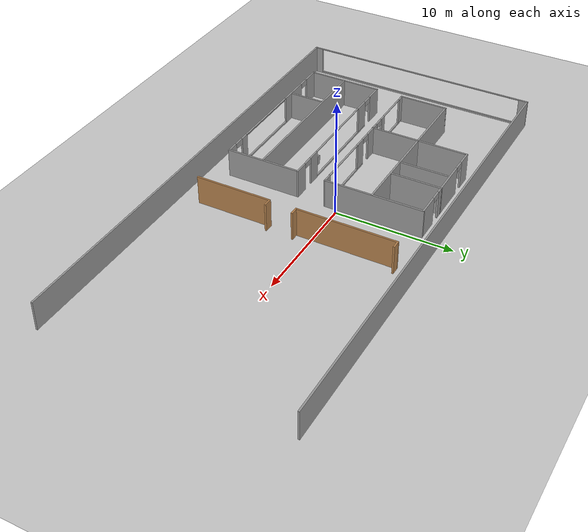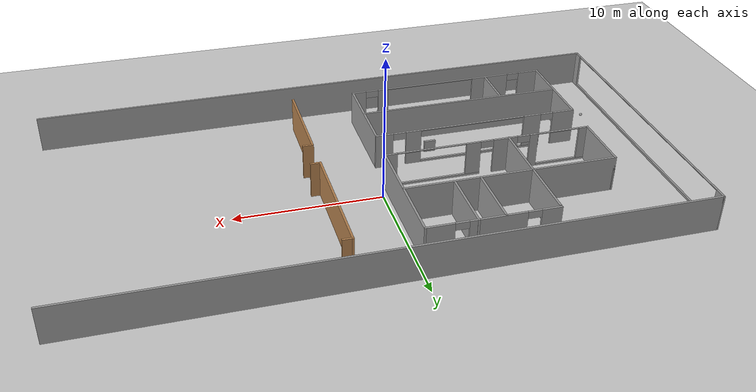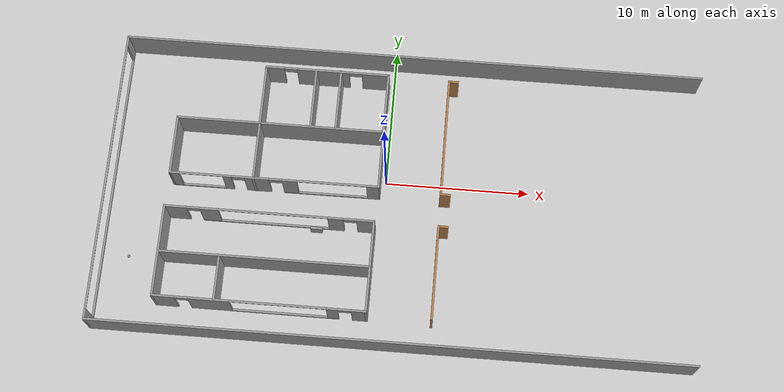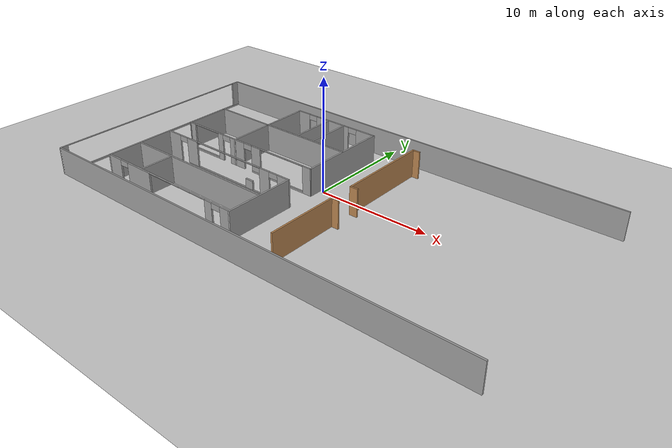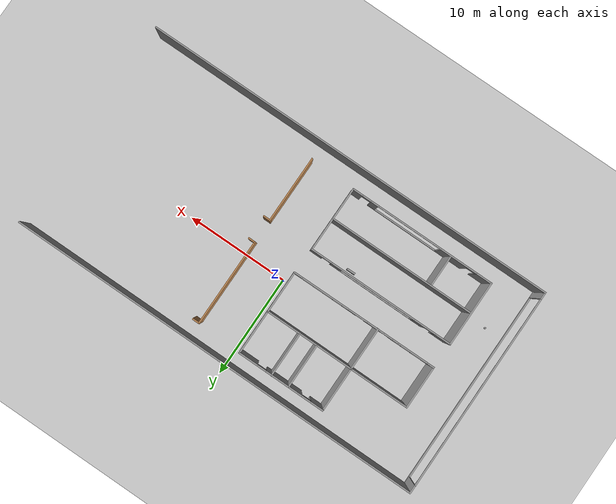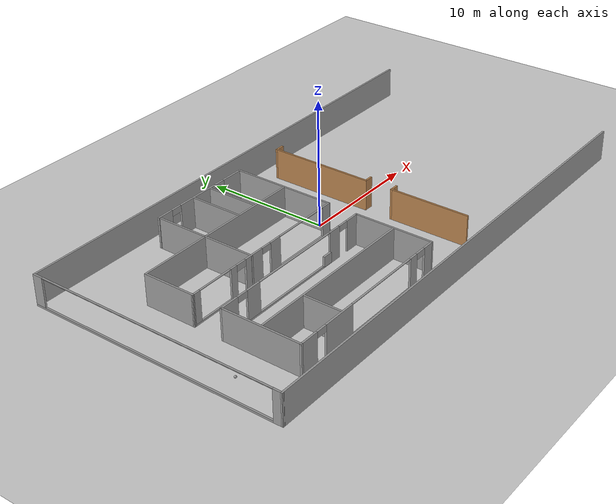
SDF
<sdf version="1.7">
 <world name="default">
  <model name="ground_plane">
   <static>1</static>
   <link name="link">
    <collision name="collision">
     <geometry><plane><normal>0 0 1</normal><size>100 100</size></plane></geometry>
     <surface>
      <contact><collide_bitmask>65535</collide_bitmask></contact>
      <friction><ode><mu>100</mu><mu2>50</mu2></ode></friction>
     </surface>
    </collision>
    <visual name="visual">
     <cast_shadows>0</cast_shadows>
     <geometry><plane><normal>0 0 1</normal><size>100 100</size></plane></geometry>
     <material>
      <script><uri>file://media/materials/scripts/gazebo.material</uri><name>Gazebo/Grey</name></script>
     </material>
    </visual>
   </link>
  </model>
  <model name="SLC_B1">
   <pose>1.2539 -1.59654 0 0 -0 0</pose>
   <link name="Wall_10">
    <pose>-20.3724 4.3e-05 0 0 -0 1.5708</pose>
    <visual name="Wall_10_Visual_0">
     <pose>-10.0243 0 1.25 0 -0 0</pose>
     <geometry><box><size>0.747884 0.15 2.5</size></box></geometry>
     <material>
      <script><uri>file://media/materials/scripts/gazebo.material</uri><name>Gazebo/Grey</name></script>
      <ambient>0.533333 0.541176 0.521569 1</ambient>
     </material>
     <meta><layer>0</layer></meta>
    </visual>
    <collision name="Wall_10_Collision_0">
     <geometry><box><size>0.747884 0.15 2.5</size></box></geometry>
     <pose>-10.0243 0 1.25 0 -0 0</pose>
    </collision>
    <visual name="Wall_10_Visual_1">
     <pose>0.373942 0 0.075 0 -0 0</pose>
     <geometry><box><size>20.0486 0.15 0.15</size></box></geometry>
     <material>
      <script><uri>file://media/materials/scripts/gazebo.material</uri><name>Gazebo/Grey</name></script>
      <ambient>0.533333 0.541176 0.521569 1</ambient>
     </material>
     <meta><layer>0</layer></meta>
    </visual>
    <collision name="Wall_10_Collision_1">
     <geometry><box><size>20.0486 0.15 0.15</size></box></geometry>
     <pose>0.373942 0 0.075 0 -0 0</pose>
    </collision>
    <visual name="Wall_10_Visual_2">
     <pose>9.98544 0 1.325 0 -0 0</pose>
     <geometry><box><size>0.82564 0.15 2.35</size></box></geometry>
     <material>
      <script><uri>file://media/materials/scripts/gazebo.material</uri><name>Gazebo/Grey</name></script>
      <ambient>0.533333 0.541176 0.521569 1</ambient>
     </material>
     <meta><layer>0</layer></meta>
    </visual>
    <collision name="Wall_10_Collision_2">
     <geometry><box><size>0.82564 0.15 2.35</size></box></geometry>
     <pose>9.98544 0 1.325 0 -0 0</pose>
    </collision>
    <visual name="Wall_10_Visual_3">
     <pose>-0.038878 0 2.475 0 -0 0</pose>
     <geometry><box><size>19.223 0.15 0.05</size></box></geometry>
     <material>
      <script><uri>file://media/materials/scripts/gazebo.material</uri><name>Gazebo/Grey</name></script>
      <ambient>0.533333 0.541176 0.521569 1</ambient>
     </material>
     <meta><layer>0</layer></meta>
    </visual>
    <collision name="Wall_10_Collision_3">
     <geometry><box><size>19.223 0.15 0.05</size></box></geometry>
     <pose>-0.038878 0 2.475 0 -0 0</pose>
    </collision>
   </link>
   <link name="Wall_51">
    <collision name="Wall_51_Collision">
     <geometry><box><size>8.5 0.15 2.5</size></box></geometry>
     <pose>0 0 1.25 0 -0 0</pose>
    </collision>
    <visual name="Wall_51_Visual">
     <pose>0 0 1.25 0 -0 0</pose>
     <geometry><box><size>8.5 0.15 2.5</size></box></geometry>
     <material>
      <script><uri>file://media/materials/scripts/gazebo.material</uri><name>Gazebo/Grey</name></script>
      <ambient>0.533333 0.541176 0.521569 1</ambient>
     </material>
     <meta><layer>0</layer></meta>
    </visual>
    <pose>-1.66639 4.62571 0 0 -0 -1.5708</pose>
   </link>
   <link name="Wall_52">
    <pose>-8.86466 0.427447 0 0 -0 -3.13836</pose>
    <visual name="Wall_52_Visual_0">
     <pose>-6.82551 0 1.25 0 -0 0</pose>
     <geometry><box><size>0.895575 0.15 2.5</size></box></geometry>
     <material>
      <script><uri>file://media/materials/scripts/gazebo.material</uri><name>Gazebo/Grey</name></script>
      <ambient>0.533333 0.541176 0.521569 1</ambient>
     </material>
     <meta><layer>0</layer></meta>
    </visual>
    <collision name="Wall_52_Collision_0">
     <geometry><box><size>0.895575 0.15 2.5</size></box></geometry>
     <pose>-6.82551 0 1.25 0 -0 0</pose>
    </collision>
    <visual name="Wall_52_Visual_1">
     <pose>1.2032 0 1.25 0 -0 0</pose>
     <geometry><box><size>1.7138 0.15 2.5</size></box></geometry>
     <material>
      <script><uri>file://media/materials/scripts/gazebo.material</uri><name>Gazebo/Grey</name></script>
      <ambient>0.533333 0.541176 0.521569 1</ambient>
     </material>
     <meta><layer>0</layer></meta>
    </visual>
    <collision name="Wall_52_Collision_1">
     <geometry><box><size>1.7138 0.15 2.5</size></box></geometry>
     <pose>1.2032 0 1.25 0 -0 0</pose>
    </collision>
    <visual name="Wall_52_Visual_2">
     <pose>3.25699 0 1.25 0 -0 0</pose>
     <geometry><box><size>0.593787 0.15 2.5</size></box></geometry>
     <material>
      <script><uri>file://media/materials/scripts/gazebo.material</uri><name>Gazebo/Grey</name></script>
      <ambient>0.533333 0.541176 0.521569 1</ambient>
     </material>
     <meta><layer>0</layer></meta>
    </visual>
    <collision name="Wall_52_Collision_2">
     <geometry><box><size>0.593787 0.15 2.5</size></box></geometry>
     <pose>3.25699 0 1.25 0 -0 0</pose>
    </collision>
    <visual name="Wall_52_Visual_3">
     <pose>-3.46571 0 0.075 0 -0 0</pose>
     <geometry><box><size>5.82402 0.15 0.15</size></box></geometry>
     <material>
      <script><uri>file://media/materials/scripts/gazebo.material</uri><name>Gazebo/Grey</name></script>
      <ambient>0.533333 0.541176 0.521569 1</ambient>
     </material>
     <meta><layer>0</layer></meta>
    </visual>
    <collision name="Wall_52_Collision_3">
     <geometry><box><size>5.82402 0.15 0.15</size></box></geometry>
     <pose>-3.46571 0 0.075 0 -0 0</pose>
    </collision>
    <visual name="Wall_52_Visual_4">
     <pose>5.41359 0 0.075 0 -0 0</pose>
     <geometry><box><size>3.71941 0.15 0.15</size></box></geometry>
     <material>
      <script><uri>file://media/materials/scripts/gazebo.material</uri><name>Gazebo/Grey</name></script>
      <ambient>0.533333 0.541176 0.521569 1</ambient>
     </material>
     <meta><layer>0</layer></meta>
    </visual>
    <collision name="Wall_52_Collision_4">
     <geometry><box><size>3.71941 0.15 0.15</size></box></geometry>
     <pose>5.41359 0 0.075 0 -0 0</pose>
    </collision>
    <visual name="Wall_52_Visual_5">
     <pose>-1.06571 0 1.325 0 -0 0</pose>
     <geometry><box><size>1.02402 0.15 2.35</size></box></geometry>
     <material>
      <script><uri>file://media/materials/scripts/gazebo.material</uri><name>Gazebo/Grey</name></script>
      <ambient>0.533333 0.541176 0.521569 1</ambient>
     </material>
     <meta><layer>0</layer></meta>
    </visual>
    <collision name="Wall_52_Collision_5">
     <geometry><box><size>1.02402 0.15 2.35</size></box></geometry>
     <pose>-1.06571 0 1.325 0 -0 0</pose>
    </collision>
    <visual name="Wall_52_Visual_6">
     <pose>-1.06571 0 1.325 0 -0 0</pose>
     <geometry><box><size>1.02402 0.15 2.35</size></box></geometry>
     <material>
      <script><uri>file://media/materials/scripts/gazebo.material</uri><name>Gazebo/Grey</name></script>
      <ambient>0.533333 0.541176 0.521569 1</ambient>
     </material>
     <meta><layer>0</layer></meta>
    </visual>
    <collision name="Wall_52_Collision_6">
     <geometry><box><size>1.02402 0.15 2.35</size></box></geometry>
     <pose>-1.06571 0 1.325 0 -0 0</pose>
    </collision>
    <visual name="Wall_52_Visual_7">
     <pose>6.91359 0 1.325 0 -0 0</pose>
     <geometry><box><size>0.719413 0.15 2.35</size></box></geometry>
     <material>
      <script><uri>file://media/materials/scripts/gazebo.material</uri><name>Gazebo/Grey</name></script>
      <ambient>0.533333 0.541176 0.521569 1</ambient>
     </material>
     <meta><layer>0</layer></meta>
    </visual>
    <collision name="Wall_52_Collision_7">
     <geometry><box><size>0.719413 0.15 2.35</size></box></geometry>
     <pose>6.91359 0 1.325 0 -0 0</pose>
    </collision>
    <visual name="Wall_52_Visual_8">
     <pose>2.5101 0 2.25 0 -0 0</pose>
     <geometry><box><size>0.9 0.15 0.5</size></box></geometry>
     <material>
      <script><uri>file://media/materials/scripts/gazebo.material</uri><name>Gazebo/Grey</name></script>
      <ambient>0.533333 0.541176 0.521569 1</ambient>
     </material>
     <meta><layer>0</layer></meta>
    </visual>
    <collision name="Wall_52_Collision_8">
     <geometry><box><size>0.9 0.15 0.5</size></box></geometry>
     <pose>2.5101 0 2.25 0 -0 0</pose>
    </collision>
    <visual name="Wall_52_Visual_9">
     <pose>-0.103701 0 2.25 0 -0 0</pose>
     <geometry><box><size>0.9 0.15 0.5</size></box></geometry>
     <material>
      <script><uri>file://media/materials/scripts/gazebo.material</uri><name>Gazebo/Grey</name></script>
      <ambient>0.533333 0.541176 0.521569 1</ambient>
     </material>
     <meta><layer>0</layer></meta>
    </visual>
    <collision name="Wall_52_Collision_9">
     <geometry><box><size>0.9 0.15 0.5</size></box></geometry>
     <pose>-0.103701 0 2.25 0 -0 0</pose>
    </collision>
    <visual name="Wall_52_Visual_10">
     <pose>-0.103701 0 2.25 0 -0 0</pose>
     <geometry><box><size>0.9 0.15 0.5</size></box></geometry>
     <material>
      <script><uri>file://media/materials/scripts/gazebo.material</uri><name>Gazebo/Grey</name></script>
      <ambient>0.533333 0.541176 0.521569 1</ambient>
     </material>
     <meta><layer>0</layer></meta>
    </visual>
    <collision name="Wall_52_Collision_10">
     <geometry><box><size>0.9 0.15 0.5</size></box></geometry>
     <pose>-0.103701 0 2.25 0 -0 0</pose>
    </collision>
    <visual name="Wall_52_Visual_11">
     <pose>-3.97772 0 2.475 0 -0 0</pose>
     <geometry><box><size>4.8 0.15 0.05</size></box></geometry>
     <material>
      <script><uri>file://media/materials/scripts/gazebo.material</uri><name>Gazebo/Grey</name></script>
      <ambient>0.533333 0.541176 0.521569 1</ambient>
     </material>
     <meta><layer>0</layer></meta>
    </visual>
    <collision name="Wall_52_Collision_11">
     <geometry><box><size>4.8 0.15 0.05</size></box></geometry>
     <pose>-3.97772 0 2.475 0 -0 0</pose>
    </collision>
    <visual name="Wall_52_Visual_12">
     <pose>5.05389 0 2.475 0 -0 0</pose>
     <geometry><box><size>3 0.15 0.05</size></box></geometry>
     <material>
      <script><uri>file://media/materials/scripts/gazebo.material</uri><name>Gazebo/Grey</name></script>
      <ambient>0.533333 0.541176 0.521569 1</ambient>
     </material>
     <meta><layer>0</layer></meta>
    </visual>
    <collision name="Wall_52_Collision_12">
     <geometry><box><size>3 0.15 0.05</size></box></geometry>
     <pose>5.05389 0 2.475 0 -0 0</pose>
    </collision>
   </link>
   <link name="Wall_56">
    <collision name="Wall_56_Collision">
     <geometry><box><size>4.25 0.15 2.5</size></box></geometry>
     <pose>0 0 1.25 0 -0 0</pose>
    </collision>
    <visual name="Wall_56_Visual">
     <pose>0 0 1.25 0 -0 0</pose>
     <geometry><box><size>4.25 0.15 2.5</size></box></geometry>
     <material>
      <script><uri>file://media/materials/scripts/gazebo.material</uri><name>Gazebo/Grey</name></script>
      <ambient>0.333333 0.341176 0.32549 1</ambient>
     </material>
     <meta><layer>0</layer></meta>
    </visual>
    <pose>-16.0629 2.45418 0 0 -0 1.5708</pose>
   </link>
   <link name="Wall_57">
    <collision name="Wall_57_Collision">
     <geometry><box><size>5.90695 0.15 2.5</size></box></geometry>
     <pose>0 0 1.25 0 -0 0</pose>
    </collision>
    <visual name="Wall_57_Visual">
     <pose>0 0 1.25 0 -0 0</pose>
     <geometry><box><size>5.90695 0.15 2.5</size></box></geometry>
     <material>
      <script><uri>file://media/materials/scripts/gazebo.material</uri><name>Gazebo/Grey</name></script>
      <ambient>0.533333 0.541176 0.521569 1</ambient>
     </material>
     <meta><layer>0</layer></meta>
    </visual>
    <pose>-13.1844 4.50418 0 0 -0 0</pose>
   </link>
   <link name="Wall_58">
    <collision name="Wall_58_Collision">
     <geometry><box><size>4.25 0.15 2.5</size></box></geometry>
     <pose>0 0 1.25 0 -0 0</pose>
    </collision>
    <visual name="Wall_58_Visual">
     <pose>0 0 1.25 0 -0 0</pose>
     <geometry><box><size>4.25 0.15 2.5</size></box></geometry>
     <material>
      <script><uri>file://media/materials/scripts/gazebo.material</uri><name>Gazebo/Grey</name></script>
      <ambient>0.533333 0.541176 0.521569 1</ambient>
     </material>
     <meta><layer>0</layer></meta>
    </visual>
    <pose>-10.306 6.55419 0 0 -0 1.5708</pose>
   </link>
   <link name="Wall_60">
    <pose>-6.01292 8.80071 0 0 -0 3.14159</pose>
    <visual name="Wall_60_Visual_0">
     <pose>-3.42334 0 1.25 0 -0 0</pose>
     <geometry><box><size>1.90332 0.15 2.5</size></box></geometry>
     <material>
      <script><uri>file://media/materials/scripts/gazebo.material</uri><name>Gazebo/Grey</name></script>
      <ambient>0.533333 0.541176 0.521569 1</ambient>
     </material>
     <meta><layer>0</layer></meta>
    </visual>
    <collision name="Wall_60_Collision_0">
     <geometry><box><size>1.90332 0.15 2.5</size></box></geometry>
     <pose>-3.42334 0 1.25 0 -0 0</pose>
    </collision>
    <visual name="Wall_60_Visual_1">
     <pose>0.281932 0 1.25 0 -0 0</pose>
     <geometry><box><size>3.70721 0.15 2.5</size></box></geometry>
     <material>
      <script><uri>file://media/materials/scripts/gazebo.material</uri><name>Gazebo/Grey</name></script>
      <ambient>0.533333 0.541176 0.521569 1</ambient>
     </material>
     <meta><layer>0</layer></meta>
    </visual>
    <collision name="Wall_60_Collision_1">
     <geometry><box><size>3.70721 0.15 2.5</size></box></geometry>
     <pose>0.281932 0 1.25 0 -0 0</pose>
    </collision>
    <visual name="Wall_60_Visual_2">
     <pose>3.70527 0 1.25 0 -0 0</pose>
     <geometry><box><size>1.33946 0.15 2.5</size></box></geometry>
     <material>
      <script><uri>file://media/materials/scripts/gazebo.material</uri><name>Gazebo/Grey</name></script>
      <ambient>0.533333 0.541176 0.521569 1</ambient>
     </material>
     <meta><layer>0</layer></meta>
    </visual>
    <collision name="Wall_60_Collision_2">
     <geometry><box><size>1.33946 0.15 2.5</size></box></geometry>
     <pose>3.70527 0 1.25 0 -0 0</pose>
    </collision>
    <visual name="Wall_60_Visual_3">
     <pose>-2.02168 0 2.25 0 -0 0</pose>
     <geometry><box><size>0.9 0.15 0.5</size></box></geometry>
     <material>
      <script><uri>file://media/materials/scripts/gazebo.material</uri><name>Gazebo/Grey</name></script>
      <ambient>0.533333 0.541176 0.521569 1</ambient>
     </material>
     <meta><layer>0</layer></meta>
    </visual>
    <collision name="Wall_60_Collision_3">
     <geometry><box><size>0.9 0.15 0.5</size></box></geometry>
     <pose>-2.02168 0 2.25 0 -0 0</pose>
    </collision>
    <visual name="Wall_60_Visual_4">
     <pose>2.58554 0 2.25 0 -0 0</pose>
     <geometry><box><size>0.9 0.15 0.5</size></box></geometry>
     <material>
      <script><uri>file://media/materials/scripts/gazebo.material</uri><name>Gazebo/Grey</name></script>
      <ambient>0.533333 0.541176 0.521569 1</ambient>
     </material>
     <meta><layer>0</layer></meta>
    </visual>
    <collision name="Wall_60_Collision_4">
     <geometry><box><size>0.9 0.15 0.5</size></box></geometry>
     <pose>2.58554 0 2.25 0 -0 0</pose>
    </collision>
   </link>
   <link name="Wall_62">
    <collision name="Wall_62_Collision">
     <geometry><box><size>8.75 0.15 2.5</size></box></geometry>
     <pose>0 0 1.25 0 -0 0</pose>
    </collision>
    <visual name="Wall_62_Visual">
     <pose>0 0 1.25 0 -0 0</pose>
     <geometry><box><size>8.75 0.15 2.5</size></box></geometry>
     <material>
      <script><uri>file://media/materials/scripts/gazebo.material</uri><name>Gazebo/Grey</name></script>
      <ambient>0.533333 0.541176 0.521569 1</ambient>
     </material>
     <meta><layer>0</layer></meta>
    </visual>
    <pose>-6.00597 4.50418 0 0 -0 0</pose>
   </link>
   <link name="Wall_64">
    <collision name="Wall_64_Collision">
     <geometry><box><size>4.25 0.15 2.5</size></box></geometry>
     <pose>0 0 1.25 0 -0 0</pose>
    </collision>
    <visual name="Wall_64_Visual">
     <pose>0 0 1.25 0 -0 0</pose>
     <geometry><box><size>4.25 0.15 2.5</size></box></geometry>
     <material>
      <script><uri>file://media/materials/scripts/gazebo.material</uri><name>Gazebo/Grey</name></script>
      <ambient>1 1 1 1</ambient>
     </material>
     <meta><layer>0</layer></meta>
    </visual>
    <pose>-10.306 2.45418 0 0 -0 -1.5708</pose>
   </link>
   <link name="Wall_67">
    <pose>-8.93444 -2.03936 0 0 -0 3.14159</pose>
    <visual name="Wall_67_Visual_0">
     <pose>-6.62333 0 1.25 0 -0 0</pose>
     <geometry><box><size>1.25334 0.15 2.5</size></box></geometry>
     <material>
      <script><uri>file://media/materials/scripts/gazebo.material</uri><name>Gazebo/Grey</name></script>
      <ambient>0.533333 0.541176 0.521569 1</ambient>
     </material>
     <meta><layer>0</layer></meta>
    </visual>
    <collision name="Wall_67_Collision_0">
     <geometry><box><size>1.25334 0.15 2.5</size></box></geometry>
     <pose>-6.62333 0 1.25 0 -0 0</pose>
    </collision>
    <visual name="Wall_67_Visual_1">
     <pose>-4.55643 0 1.25 0 -0 0</pose>
     <geometry><box><size>1.08046 0.15 2.5</size></box></geometry>
     <material>
      <script><uri>file://media/materials/scripts/gazebo.material</uri><name>Gazebo/Grey</name></script>
      <ambient>0.533333 0.541176 0.521569 1</ambient>
     </material>
     <meta><layer>0</layer></meta>
    </visual>
    <collision name="Wall_67_Collision_1">
     <geometry><box><size>1.08046 0.15 2.5</size></box></geometry>
     <pose>-4.55643 0 1.25 0 -0 0</pose>
    </collision>
    <visual name="Wall_67_Visual_2">
     <pose>6.45018 0 1.25 0 -0 0</pose>
     <geometry><box><size>1.59964 0.15 2.5</size></box></geometry>
     <material>
      <script><uri>file://media/materials/scripts/gazebo.material</uri><name>Gazebo/Grey</name></script>
      <ambient>0.533333 0.541176 0.521569 1</ambient>
     </material>
     <meta><layer>0</layer></meta>
    </visual>
    <collision name="Wall_67_Collision_2">
     <geometry><box><size>1.59964 0.15 2.5</size></box></geometry>
     <pose>6.45018 0 1.25 0 -0 0</pose>
    </collision>
    <visual name="Wall_67_Visual_3">
     <pose>0.367081 0 0.075 0 -0 0</pose>
     <geometry><box><size>8.76656 0.15 0.15</size></box></geometry>
     <material>
      <script><uri>file://media/materials/scripts/gazebo.material</uri><name>Gazebo/Grey</name></script>
      <ambient>0.533333 0.541176 0.521569 1</ambient>
     </material>
     <meta><layer>0</layer></meta>
    </visual>
    <collision name="Wall_67_Collision_3">
     <geometry><box><size>8.76656 0.15 0.15</size></box></geometry>
     <pose>0.367081 0 0.075 0 -0 0</pose>
    </collision>
    <visual name="Wall_67_Visual_4">
     <pose>4.11708 0 1.325 0 -0 0</pose>
     <geometry><box><size>1.26656 0.15 2.35</size></box></geometry>
     <material>
      <script><uri>file://media/materials/scripts/gazebo.material</uri><name>Gazebo/Grey</name></script>
      <ambient>0.533333 0.541176 0.521569 1</ambient>
     </material>
     <meta><layer>0</layer></meta>
    </visual>
    <collision name="Wall_67_Collision_4">
     <geometry><box><size>1.26656 0.15 2.35</size></box></geometry>
     <pose>4.11708 0 1.325 0 -0 0</pose>
    </collision>
    <visual name="Wall_67_Visual_5">
     <pose>-5.54666 0 2.25 0 -0 0</pose>
     <geometry><box><size>0.9 0.15 0.5</size></box></geometry>
     <material>
      <script><uri>file://media/materials/scripts/gazebo.material</uri><name>Gazebo/Grey</name></script>
      <ambient>0.533333 0.541176 0.521569 1</ambient>
     </material>
     <meta><layer>0</layer></meta>
    </visual>
    <collision name="Wall_67_Collision_5">
     <geometry><box><size>0.9 0.15 0.5</size></box></geometry>
     <pose>-5.54666 0 2.25 0 -0 0</pose>
    </collision>
    <visual name="Wall_67_Visual_6">
     <pose>5.20036 0 2.25 0 -0 0</pose>
     <geometry><box><size>0.9 0.15 0.5</size></box></geometry>
     <material>
      <script><uri>file://media/materials/scripts/gazebo.material</uri><name>Gazebo/Grey</name></script>
      <ambient>0.533333 0.541176 0.521569 1</ambient>
     </material>
     <meta><layer>0</layer></meta>
    </visual>
    <collision name="Wall_67_Collision_6">
     <geometry><box><size>0.9 0.15 0.5</size></box></geometry>
     <pose>5.20036 0 2.25 0 -0 0</pose>
    </collision>
    <visual name="Wall_67_Visual_7">
     <pose>-0.266199 0 2.475 0 -0 0</pose>
     <geometry><box><size>7.5 0.15 0.05</size></box></geometry>
     <material>
      <script><uri>file://media/materials/scripts/gazebo.material</uri><name>Gazebo/Grey</name></script>
      <ambient>0.533333 0.541176 0.521569 1</ambient>
     </material>
     <meta><layer>0</layer></meta>
    </visual>
    <collision name="Wall_67_Collision_7">
     <geometry><box><size>7.5 0.15 0.05</size></box></geometry>
     <pose>-0.266199 0 2.475 0 -0 0</pose>
    </collision>
   </link>
   <link name="Wall_69">
    <collision name="Wall_69_Collision">
     <geometry><box><size>6.41871 0.15 2.5</size></box></geometry>
     <pose>0 0 1.25 0 -0 0</pose>
    </collision>
    <visual name="Wall_69_Visual">
     <pose>0 0 1.25 0 -0 0</pose>
     <geometry><box><size>6.41871 0.15 2.5</size></box></geometry>
     <material>
      <script><uri>file://media/materials/scripts/gazebo.material</uri><name>Gazebo/Grey</name></script>
      <ambient>0.533333 0.541176 0.521569 1</ambient>
     </material>
     <meta><layer>0</layer></meta>
    </visual>
    <pose>-16.1094 -5.22025 0 0 -0 -1.5708</pose>
   </link>
   <link name="Wall_7">
    <collision name="Wall_7_Collision">
     <geometry><box><size>40.75 0.15 2.5</size></box></geometry>
     <pose>0 0 1.25 0 -0 0</pose>
    </collision>
    <visual name="Wall_7_Visual">
     <pose>0 0 1.25 0 -0 0</pose>
     <geometry><box><size>40.75 0.15 2.5</size></box></geometry>
     <material>
      <script><uri>file://media/materials/scripts/gazebo.material</uri><name>Gazebo/Grey</name></script>
      <ambient>0.533333 0.541176 0.521569 1</ambient>
     </material>
     <meta><layer>0</layer></meta>
    </visual>
    <pose>0.023858 10.3233 0 0 -0 0</pose>
   </link>
   <link name="Wall_71">
    <pose>-8.93444 -8.3546 0 0 -0 0</pose>
    <visual name="Wall_71_Visual_0">
     <pose>-6.45885 0 1.25 0 -0 0</pose>
     <geometry><box><size>1.58229 0.15 2.5</size></box></geometry>
     <material>
      <script><uri>file://media/materials/scripts/gazebo.material</uri><name>Gazebo/Grey</name></script>
      <ambient>0.533333 0.541176 0.521569 1</ambient>
     </material>
     <meta><layer>0</layer></meta>
    </visual>
    <collision name="Wall_71_Collision_0">
     <geometry><box><size>1.58229 0.15 2.5</size></box></geometry>
     <pose>-6.45885 0 1.25 0 -0 0</pose>
    </collision>
    <visual name="Wall_71_Visual_1">
     <pose>-3.37115 0 1.25 0 -0 0</pose>
     <geometry><box><size>2.79312 0.15 2.5</size></box></geometry>
     <material>
      <script><uri>file://media/materials/scripts/gazebo.material</uri><name>Gazebo/Grey</name></script>
      <ambient>0.533333 0.541176 0.521569 1</ambient>
     </material>
     <meta><layer>0</layer></meta>
    </visual>
    <collision name="Wall_71_Collision_1">
     <geometry><box><size>2.79312 0.15 2.5</size></box></geometry>
     <pose>-3.37115 0 1.25 0 -0 0</pose>
    </collision>
    <visual name="Wall_71_Visual_2">
     <pose>6.72288 0 1.25 0 -0 0</pose>
     <geometry><box><size>1.05425 0.15 2.5</size></box></geometry>
     <material>
      <script><uri>file://media/materials/scripts/gazebo.material</uri><name>Gazebo/Grey</name></script>
      <ambient>0.533333 0.541176 0.521569 1</ambient>
     </material>
     <meta><layer>0</layer></meta>
    </visual>
    <collision name="Wall_71_Collision_2">
     <geometry><box><size>1.05425 0.15 2.5</size></box></geometry>
     <pose>6.72288 0 1.25 0 -0 0</pose>
    </collision>
    <visual name="Wall_71_Visual_3">
     <pose>1.66058 0 0.075 0 -0 0</pose>
     <geometry><box><size>7.27034 0.15 0.15</size></box></geometry>
     <material>
      <script><uri>file://media/materials/scripts/gazebo.material</uri><name>Gazebo/Grey</name></script>
      <ambient>0.533333 0.541176 0.521569 1</ambient>
     </material>
     <meta><layer>0</layer></meta>
    </visual>
    <collision name="Wall_71_Collision_3">
     <geometry><box><size>7.27034 0.15 0.15</size></box></geometry>
     <pose>1.66058 0 0.075 0 -0 0</pose>
    </collision>
    <visual name="Wall_71_Visual_4">
     <pose>4.91058 0 1.325 0 -0 0</pose>
     <geometry><box><size>0.770341 0.15 2.35</size></box></geometry>
     <material>
      <script><uri>file://media/materials/scripts/gazebo.material</uri><name>Gazebo/Grey</name></script>
      <ambient>0.533333 0.541176 0.521569 1</ambient>
     </material>
     <meta><layer>0</layer></meta>
    </visual>
    <collision name="Wall_71_Collision_4">
     <geometry><box><size>0.770341 0.15 2.35</size></box></geometry>
     <pose>4.91058 0 1.325 0 -0 0</pose>
    </collision>
    <visual name="Wall_71_Visual_5">
     <pose>-5.21771 0 2.25 0 -0 0</pose>
     <geometry><box><size>0.9 0.15 0.5</size></box></geometry>
     <material>
      <script><uri>file://media/materials/scripts/gazebo.material</uri><name>Gazebo/Grey</name></script>
      <ambient>0.533333 0.541176 0.521569 1</ambient>
     </material>
     <meta><layer>0</layer></meta>
    </visual>
    <collision name="Wall_71_Collision_5">
     <geometry><box><size>0.9 0.15 0.5</size></box></geometry>
     <pose>-5.21771 0 2.25 0 -0 0</pose>
    </collision>
    <visual name="Wall_71_Visual_6">
     <pose>5.74575 0 2.25 0 -0 0</pose>
     <geometry><box><size>0.9 0.15 0.5</size></box></geometry>
     <material>
      <script><uri>file://media/materials/scripts/gazebo.material</uri><name>Gazebo/Grey</name></script>
      <ambient>0.533333 0.541176 0.521569 1</ambient>
     </material>
     <meta><layer>0</layer></meta>
    </visual>
    <collision name="Wall_71_Collision_6">
     <geometry><box><size>0.9 0.15 0.5</size></box></geometry>
     <pose>5.74575 0 2.25 0 -0 0</pose>
    </collision>
    <visual name="Wall_71_Visual_7">
     <pose>1.27541 0 2.475 0 -0 0</pose>
     <geometry><box><size>6.5 0.15 0.05</size></box></geometry>
     <material>
      <script><uri>file://media/materials/scripts/gazebo.material</uri><name>Gazebo/Grey</name></script>
      <ambient>0.533333 0.541176 0.521569 1</ambient>
     </material>
     <meta><layer>0</layer></meta>
    </visual>
    <collision name="Wall_71_Collision_7">
     <geometry><box><size>6.5 0.15 0.05</size></box></geometry>
     <pose>1.27541 0 2.475 0 -0 0</pose>
    </collision>
   </link>
   <link name="Wall_72">
    <collision name="Wall_72_Collision">
     <geometry><box><size>6.41871 0.15 2.5</size></box></geometry>
     <pose>0 0 1.25 0 -0 0</pose>
    </collision>
    <visual name="Wall_72_Visual">
     <pose>0 0 1.25 0 -0 0</pose>
     <geometry><box><size>6.41871 0.15 2.5</size></box></geometry>
     <material>
      <script><uri>file://media/materials/scripts/gazebo.material</uri><name>Gazebo/Grey</name></script>
      <ambient>0.533333 0.541176 0.521569 1</ambient>
     </material>
     <meta><layer>0</layer></meta>
    </visual>
    <pose>-1.75944 -5.22025 0 0 -0 1.5708</pose>
   </link>
   <link name="Wall_74">
    <collision name="Wall_74_Collision">
     <geometry><box><size>14.3 0.15 2.5</size></box></geometry>
     <pose>0 0 1.25 0 -0 0</pose>
    </collision>
    <visual name="Wall_74_Visual">
     <pose>0 0 1.25 0 -0 0</pose>
     <geometry><box><size>14.3 0.15 2.5</size></box></geometry>
     <material>
      <script><uri>file://media/materials/scripts/gazebo.material</uri><name>Gazebo/Grey</name></script>
      <ambient>0.533333 0.541176 0.521569 1</ambient>
     </material>
     <meta><layer>0</layer></meta>
    </visual>
    <pose>-8.92076 -5.24951 0 0 -0 0</pose>
   </link>
   <link name="Wall_76">
    <collision name="Wall_76_Collision">
     <geometry><box><size>3 0.15 2.5</size></box></geometry>
     <pose>0 0 1.25 0 -0 0</pose>
    </collision>
    <visual name="Wall_76_Visual">
     <pose>0 0 1.25 0 -0 0</pose>
     <geometry><box><size>3 0.15 2.5</size></box></geometry>
     <material>
      <script><uri>file://media/materials/scripts/gazebo.material</uri><name>Gazebo/Grey</name></script>
      <ambient>0.533333 0.541176 0.521569 1</ambient>
     </material>
     <meta><layer>0</layer></meta>
    </visual>
    <pose>-11.9482 -6.81409 0 0 -0 -1.5708</pose>
   </link>
   <link name="Wall_80">
    <collision name="Wall_80_Collision">
     <geometry><box><size>4.35 0.15 2.5</size></box></geometry>
     <pose>0 0 1.25 0 -0 0</pose>
    </collision>
    <visual name="Wall_80_Visual">
     <pose>0 0 1.25 0 -0 0</pose>
     <geometry><box><size>4.35 0.15 2.5</size></box></geometry>
     <material>
      <script><uri>file://media/materials/scripts/gazebo.material</uri><name>Gazebo/Grey</name></script>
      <ambient>0.533333 0.541176 0.521569 1</ambient>
     </material>
     <meta><layer>0</layer></meta>
    </visual>
    <pose>-6.76468 6.70071 0 0 -0 -1.5708</pose>
   </link>
   <link name="Wall_83">
    <collision name="Wall_83_Collision">
     <geometry><box><size>4.35 0.15 2.5</size></box></geometry>
     <pose>0 0 1.25 0 -0 0</pose>
    </collision>
    <visual name="Wall_83_Visual">
     <pose>0 0 1.25 0 -0 0</pose>
     <geometry><box><size>4.35 0.15 2.5</size></box></geometry>
     <material>
      <script><uri>file://media/materials/scripts/gazebo.material</uri><name>Gazebo/Grey</name></script>
      <ambient>0.533333 0.541176 0.521569 1</ambient>
     </material>
     <meta><layer>0</layer></meta>
    </visual>
    <pose>-5.01143 6.71659 0 0 -0 -1.5708</pose>
   </link>
   <link name="Wall_85">
    <collision name="Wall_85_Collision">
     <geometry><box><size>0.75 0.15 2.5</size></box></geometry>
     <pose>0 0 1.25 0 -0 0</pose>
    </collision>
    <visual name="Wall_85_Visual">
     <pose>0 0 1.25 0 -0 0</pose>
     <geometry><box><size>0.75 0.15 2.5</size></box></geometry>
     <material>
      <script><uri>file://media/materials/scripts/gazebo.material</uri><name>Gazebo/Wood</name></script>
      <ambient>1 1 1 1</ambient>
     </material>
     <meta><layer>0</layer></meta>
    </visual>
    <pose>2.93607 8.67131 0 0 -0 3.14159</pose>
   </link>
   <link name="Wall_86">
    <collision name="Wall_86_Collision">
     <geometry><box><size>8.56939 0.15 2.5</size></box></geometry>
     <pose>0 0 1.25 0 -0 0</pose>
    </collision>
    <visual name="Wall_86_Visual">
     <pose>0 0 1.25 0 -0 0</pose>
     <geometry><box><size>8.56939 0.15 2.5</size></box></geometry>
     <material>
      <script><uri>file://media/materials/scripts/gazebo.material</uri><name>Gazebo/Wood</name></script>
      <ambient>1 1 1 1</ambient>
     </material>
     <meta><layer>0</layer></meta>
    </visual>
    <pose>2.63606 4.46162 0 0 -0 -1.5708</pose>
   </link>
   <link name="Wall_87">
    <collision name="Wall_87_Collision">
     <geometry><box><size>0.75 0.15 2.5</size></box></geometry>
     <pose>0 0 1.25 0 -0 0</pose>
    </collision>
    <visual name="Wall_87_Visual">
     <pose>0 0 1.25 0 -0 0</pose>
     <geometry><box><size>0.75 0.15 2.5</size></box></geometry>
     <material>
      <script><uri>file://media/materials/scripts/gazebo.material</uri><name>Gazebo/Wood</name></script>
      <ambient>1 1 1 1</ambient>
     </material>
     <meta><layer>0</layer></meta>
    </visual>
    <pose>2.93607 0.25192 0 0 -0 0</pose>
   </link>
   <link name="Wall_89">
    <collision name="Wall_89_Collision">
     <geometry><box><size>0.75 0.15 2.5</size></box></geometry>
     <pose>0 0 1.25 0 -0 0</pose>
    </collision>
    <visual name="Wall_89_Visual">
     <pose>0 0 1.25 0 -0 0</pose>
     <geometry><box><size>0.75 0.15 2.5</size></box></geometry>
     <material>
      <script><uri>file://media/materials/scripts/gazebo.material</uri><name>Gazebo/Wood</name></script>
      <ambient>1 1 1 1</ambient>
     </material>
     <meta><layer>0</layer></meta>
    </visual>
    <pose>2.94677 -2.04592 0 0 -0 3.14159</pose>
   </link>
   <link name="Wall_9">
    <collision name="Wall_9_Collision">
     <geometry><box><size>40.8463 0.15 2.5</size></box></geometry>
     <pose>0 0 1.25 0 -0 0</pose>
    </collision>
    <visual name="Wall_9_Visual">
     <pose>0 0 1.25 0 -0 0</pose>
     <geometry><box><size>40.8463 0.15 2.5</size></box></geometry>
     <material>
      <script><uri>file://media/materials/scripts/gazebo.material</uri><name>Gazebo/Grey</name></script>
      <ambient>0.533333 0.541176 0.521569 1</ambient>
     </material>
     <meta><layer>0</layer></meta>
    </visual>
    <pose>-0.024251 -10.3 0 0 -0 -3.14045</pose>
   </link>
   <link name="Wall_90">
    <collision name="Wall_90_Collision">
     <geometry><box><size>6.57563 0.15 2.5</size></box></geometry>
     <pose>0 0 1.25 0 -0 0</pose>
    </collision>
    <visual name="Wall_90_Visual">
     <pose>0 0 1.25 0 -0 0</pose>
     <geometry><box><size>6.57563 0.15 2.5</size></box></geometry>
     <material>
      <script><uri>file://media/materials/scripts/gazebo.material</uri><name>Gazebo/Wood</name></script>
      <ambient>1 1 1 1</ambient>
     </material>
     <meta><layer>0</layer></meta>
    </visual>
    <pose>2.64677 -5.25874 0 0 -0 -1.5708</pose>
   </link>
   <link name="Window_13">
    <collision name="Window_13_Collision">
     <geometry><box><size>0.8 0.17 0.8</size></box></geometry>
     <pose>0 0 0.4 0 -0 0</pose>
    </collision>
    <visual name="Window_13_Visual">
     <pose>0 0 0.4 0 -0 0</pose>
     <geometry><box><size>0.8 0.17 0.8</size></box></geometry>
     <material>
      <script><uri>file://media/materials/scripts/gazebo.material</uri><name>Gazebo/Grey</name></script>
     </material>
    </visual>
    <pose>-5.71397 -2.45808 0.5 0 -0 0</pose>
   </link>
   <static>1</static>
  </model>
  <model name="white_ball">
   <link name="link">
    <inertial>
     <mass>1</mass>
     <inertia><ixx>0.1</ixx><ixy>0</ixy><ixz>0</ixz><iyy>0.1</iyy><iyz>0</iyz><izz>0.1</izz></inertia>
    </inertial>
    <visual name="visual">
     <geometry><sphere><radius>0.1</radius></sphere></geometry>
     <material>
      <script><name>Gazebo/Grey</name><uri>file://media/materials/scripts/gazebo.material</uri></script>
      <shader type="pixel"><normal_map>__default__</normal_map></shader>
      <ambient>1 1 1 1</ambient>
      <diffuse>1 1 1 1</diffuse>
      <specular>1 1 1 1</specular>
      <emissive>1 1 1 1</emissive>
     </material>
    </visual>
    <collision name="collision">
     <geometry><sphere><radius>0.1</radius></sphere></geometry>
     <surface>
      <friction>
       <ode><mu>1</mu><mu2>1</mu2><fdir1>0 0 0</fdir1><slip1>0</slip1><slip2>0</slip2></ode>
       <torsional>
        <coefficient>1</coefficient>
        <patch_radius>0</patch_radius>
        <surface_radius>0</surface_radius>
        <use_patch_radius>1</use_patch_radius>
        <ode><slip>0</slip></ode>
       </torsional>
      </friction>
      <bounce><restitution_coefficient>0</restitution_coefficient><threshold>1e+06</threshold></bounce>
      <contact>
       <collide_without_contact>0</collide_without_contact>
       <collide_without_contact_bitmask>1</collide_without_contact_bitmask>
       <collide_bitmask>1</collide_bitmask>
       <ode>
        <soft_cfm>0</soft_cfm>
        <soft_erp>0.2</soft_erp>
        <kp>1e+13</kp>
        <kd>1</kd>
        <max_vel>0.01</max_vel>
        <min_depth>0</min_depth>
       </ode>
       <bullet>
        <split_impulse>1</split_impulse>
        <split_impulse_penetration_threshold>-0.01</split_impulse_penetration_threshold>
        <soft_cfm>0</soft_cfm>
        <soft_erp>0.2</soft_erp>
        <kp>1e+13</kp>
        <kd>1</kd>
       </bullet>
      </contact>
     </surface>
    </collision>
   </link>
   <static>0</static>
   <pose>-17.2929 -6.74787 0.074228 0 -0 0</pose>
  </model>
 </world>
</sdf>
